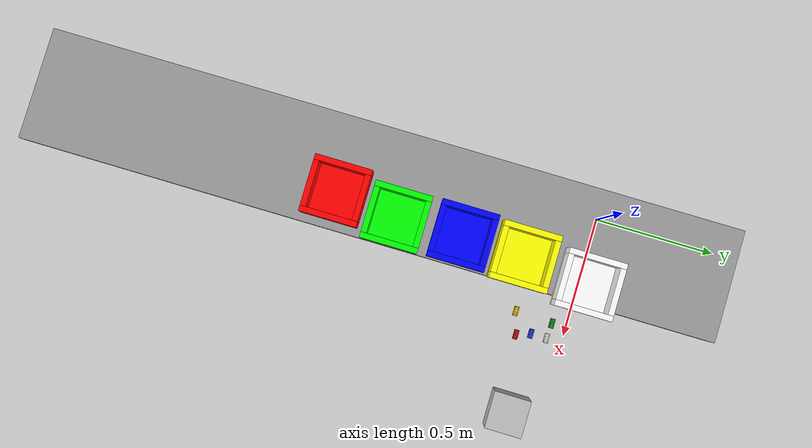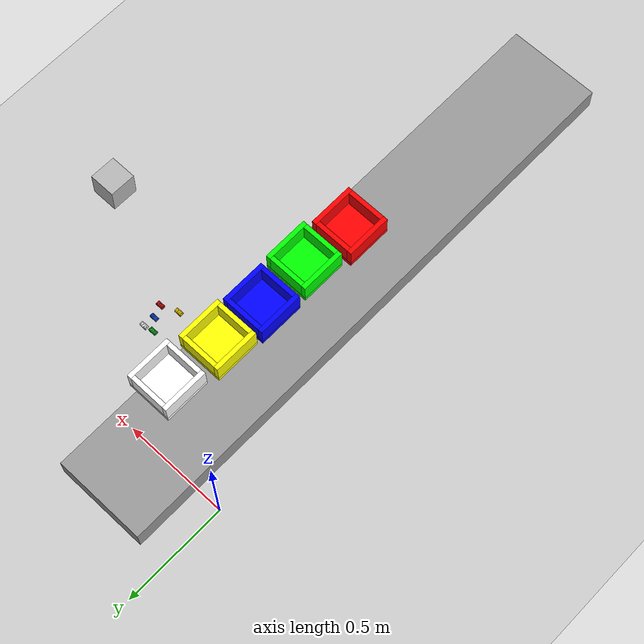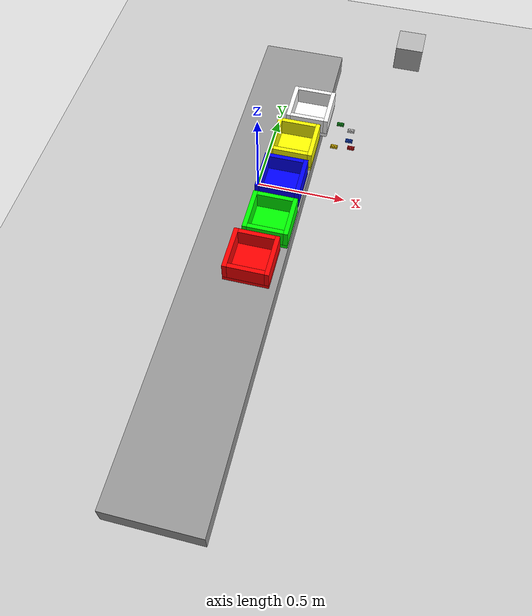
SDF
<sdf version="1.9">
 <world name="empty">
  <physics name="1ms" type="ignored">
   <max_step_size>0.001</max_step_size>
   <real_time_factor>1</real_time_factor>
   <real_time_update_rate>1000</real_time_update_rate>
  </physics>
  <plugin name="ignition::gazebo::systems::Sensors" filename="ignition-gazebo-sensors-system">
   <render_engine>ogre2</render_engine>
  </plugin>
  <plugin name="gz::sim::systems::Physics" filename="ignition-gazebo-physics-system"/>
  <plugin name="gz::sim::systems::UserCommands" filename="ignition-gazebo-user-commands-system"/>
  <plugin name="gz::sim::systems::SceneBroadcaster" filename="ignition-gazebo-scene-broadcaster-system"/>
  <plugin name="gz::sim::systems::Contact" filename="ignition-gazebo-contact-system"/>
  <gravity>0 0 -9.8</gravity>
  <magnetic_field>6e-06 2.3e-05 -4.2e-05</magnetic_field>
  <atmosphere type="adiabatic"/>
  <scene><ambient>0.4 0.4 0.4 1</ambient><background>0.7 0.7 0.7 1</background><shadows>true</shadows></scene>
  <model name="ground_plane">
   <static>true</static>
   <link name="link">
    <collision name="collision">
     <geometry><plane><normal>0 0 1</normal><size>100 100</size></plane></geometry>
    </collision>
    <visual name="visual">
     <geometry><plane><normal>0 0 1</normal><size>100 100</size></plane></geometry>
     <material>
      <ambient>0.8 0.8 0.8 1</ambient>
      <diffuse>0.8 0.8 0.8 1</diffuse>
      <specular>0.8 0.8 0.8 1</specular>
     </material>
    </visual>
    <inertial>
     <mass>1</mass>
     <inertia><ixx>1</ixx><ixy>0</ixy><ixz>0</ixz><iyy>1</iyy><iyz>0</iyz><izz>1</izz></inertia>
    </inertial>
   </link>
  </model>
  <include>
   <uri>model://models/underbin_bench</uri>
   <name>underbin_bench</name>
   <pose>0.162367 -0.864988 0.636012 0 -0 0</pose>
  </include>
  <include>
   <uri>model://models/bin_red</uri>
   <name>bin_red</name>
   <pose>0.233854 -0.99784 0.713556 0 -0 0</pose>
  </include>
  <include>
   <uri>model://models/bin_green</uri>
   <name>bin_green</name>
   <pose>0.26088 -0.778593 0.708401 0 -0 0</pose>
  </include>
  <include>
   <uri>model://models/bin_blue</uri>
   <name>bin_blue</name>
   <pose>0.256463 -0.54652 0.702335 0 -0 0</pose>
  </include>
  <include>
   <uri>model://models/bin_yellow</uri>
   <name>bin_yellow</name>
   <pose>0.266331 -0.328466 0.71476 0 -0 0</pose>
  </include>
  <include>
   <uri>model://models/bin_white</uri>
   <name>bin_white</name>
   <pose>0.293498 -0.093944 0.70429 0 -0 0</pose>
  </include>
  <model name="lego_2x4_white">
   <static>false</static>
   <link name="link">
    <inertial>
     <mass>0.016</mass>
     <inertia>
      <ixx>9.9999999999999995e-07</ixx>
      <ixy>0</ixy>
      <ixz>0</ixz>
      <iyy>9.9999999999999995e-07</iyy>
      <iyz>0</iyz>
      <izz>9.9999999999999995e-07</izz>
     </inertia>
    </inertial>
    <visual name="body">
     <pose>0 0 0.004800 0 0 0</pose>
     <geometry><box><size>0.032 0.016 0.0096</size></box></geometry>
     <material>
      <ambient>0.95 0.95 0.95 1</ambient>
      <diffuse>0.95 0.95 0.95 1</diffuse>
      <specular>0.2 0.2 0.2 1</specular>
     </material>
    </visual>
    <collision name="body_col">
     <pose>0 0 0.004800 0 0 0</pose>
     <geometry><box><size>0.032 0.016 0.0096</size></box></geometry>
     <surface><friction><ode><mu>0.80000000000000004</mu><mu2>0.80000000000000004</mu2></ode></friction></surface>
    </collision>
    <visual name="stud_0_0">
     <pose>-0.012000 -0.004000 0.010500 0 0 0</pose>
     <geometry><cylinder><radius>0.0023999999999999998</radius><length>0.0018</length></cylinder></geometry>
     <material>
      <ambient>0.95 0.95 0.95 1</ambient>
      <diffuse>0.95 0.95 0.95 1</diffuse>
      <specular>0.2 0.2 0.2 1</specular>
     </material>
    </visual>
    <collision name="stud_col_0_0">
     <pose>-0.012000 -0.004000 0.010500 0 0 0</pose>
     <geometry><cylinder><radius>0.0023999999999999998</radius><length>0.0018</length></cylinder></geometry>
    </collision>
    <visual name="stud_0_1">
     <pose>-0.012000 0.004000 0.010500 0 0 0</pose>
     <geometry><cylinder><radius>0.0023999999999999998</radius><length>0.0018</length></cylinder></geometry>
     <material>
      <ambient>0.95 0.95 0.95 1</ambient>
      <diffuse>0.95 0.95 0.95 1</diffuse>
      <specular>0.2 0.2 0.2 1</specular>
     </material>
    </visual>
    <collision name="stud_col_0_1">
     <pose>-0.012000 0.004000 0.010500 0 0 0</pose>
     <geometry><cylinder><radius>0.0023999999999999998</radius><length>0.0018</length></cylinder></geometry>
    </collision>
    <visual name="stud_1_0">
     <pose>-0.004000 -0.004000 0.010500 0 0 0</pose>
     <geometry><cylinder><radius>0.0023999999999999998</radius><length>0.0018</length></cylinder></geometry>
     <material>
      <ambient>0.95 0.95 0.95 1</ambient>
      <diffuse>0.95 0.95 0.95 1</diffuse>
      <specular>0.2 0.2 0.2 1</specular>
     </material>
    </visual>
    <collision name="stud_col_1_0">
     <pose>-0.004000 -0.004000 0.010500 0 0 0</pose>
     <geometry><cylinder><radius>0.0023999999999999998</radius><length>0.0018</length></cylinder></geometry>
    </collision>
    <visual name="stud_1_1">
     <pose>-0.004000 0.004000 0.010500 0 0 0</pose>
     <geometry><cylinder><radius>0.0023999999999999998</radius><length>0.0018</length></cylinder></geometry>
     <material>
      <ambient>0.95 0.95 0.95 1</ambient>
      <diffuse>0.95 0.95 0.95 1</diffuse>
      <specular>0.2 0.2 0.2 1</specular>
     </material>
    </visual>
    <collision name="stud_col_1_1">
     <pose>-0.004000 0.004000 0.010500 0 0 0</pose>
     <geometry><cylinder><radius>0.0023999999999999998</radius><length>0.0018</length></cylinder></geometry>
    </collision>
    <visual name="stud_2_0">
     <pose>0.004000 -0.004000 0.010500 0 0 0</pose>
     <geometry><cylinder><radius>0.0023999999999999998</radius><length>0.0018</length></cylinder></geometry>
     <material>
      <ambient>0.95 0.95 0.95 1</ambient>
      <diffuse>0.95 0.95 0.95 1</diffuse>
      <specular>0.2 0.2 0.2 1</specular>
     </material>
    </visual>
    <collision name="stud_col_2_0">
     <pose>0.004000 -0.004000 0.010500 0 0 0</pose>
     <geometry><cylinder><radius>0.0023999999999999998</radius><length>0.0018</length></cylinder></geometry>
    </collision>
    <visual name="stud_2_1">
     <pose>0.004000 0.004000 0.010500 0 0 0</pose>
     <geometry><cylinder><radius>0.0023999999999999998</radius><length>0.0018</length></cylinder></geometry>
     <material>
      <ambient>0.95 0.95 0.95 1</ambient>
      <diffuse>0.95 0.95 0.95 1</diffuse>
      <specular>0.2 0.2 0.2 1</specular>
     </material>
    </visual>
    <collision name="stud_col_2_1">
     <pose>0.004000 0.004000 0.010500 0 0 0</pose>
     <geometry><cylinder><radius>0.0023999999999999998</radius><length>0.0018</length></cylinder></geometry>
    </collision>
    <visual name="stud_3_0">
     <pose>0.012000 -0.004000 0.010500 0 0 0</pose>
     <geometry><cylinder><radius>0.0023999999999999998</radius><length>0.0018</length></cylinder></geometry>
     <material>
      <ambient>0.95 0.95 0.95 1</ambient>
      <diffuse>0.95 0.95 0.95 1</diffuse>
      <specular>0.2 0.2 0.2 1</specular>
     </material>
    </visual>
    <collision name="stud_col_3_0">
     <pose>0.012000 -0.004000 0.010500 0 0 0</pose>
     <geometry><cylinder><radius>0.0023999999999999998</radius><length>0.0018</length></cylinder></geometry>
    </collision>
    <visual name="stud_3_1">
     <pose>0.012000 0.004000 0.010500 0 0 0</pose>
     <geometry><cylinder><radius>0.0023999999999999998</radius><length>0.0018</length></cylinder></geometry>
     <material>
      <ambient>0.95 0.95 0.95 1</ambient>
      <diffuse>0.95 0.95 0.95 1</diffuse>
      <specular>0.2 0.2 0.2 1</specular>
     </material>
    </visual>
    <collision name="stud_col_3_1">
     <pose>0.012000 0.004000 0.010500 0 0 0</pose>
     <geometry><cylinder><radius>0.0023999999999999998</radius><length>0.0018</length></cylinder></geometry>
    </collision>
   </link>
   <pose>0.506689 -0.181716 0.745001 0 -0 0</pose>
  </model>
  <model name="lego_2x4_red">
   <static>false</static>
   <link name="link">
    <inertial>
     <mass>0.016</mass>
     <inertia>
      <ixx>9.9999999999999995e-07</ixx>
      <ixy>0</ixy>
      <ixz>0</ixz>
      <iyy>9.9999999999999995e-07</iyy>
      <iyz>0</iyz>
      <izz>9.9999999999999995e-07</izz>
     </inertia>
    </inertial>
    <visual name="body">
     <pose>0 0 0.004800 0 0 0</pose>
     <geometry><box><size>0.032 0.016 0.0096</size></box></geometry>
     <material>
      <ambient>0.85 0.1 0.1 1</ambient>
      <diffuse>0.85 0.1 0.1 1</diffuse>
      <specular>0.2 0.2 0.2 1</specular>
     </material>
    </visual>
    <collision name="body_col">
     <pose>0 0 0.004800 0 0 0</pose>
     <geometry><box><size>0.032 0.016 0.0096</size></box></geometry>
     <surface><friction><ode><mu>0.80000000000000004</mu><mu2>0.80000000000000004</mu2></ode></friction></surface>
    </collision>
    <visual name="stud_0_0">
     <pose>-0.012000 -0.004000 0.010500 0 0 0</pose>
     <geometry><cylinder><radius>0.0023999999999999998</radius><length>0.0018</length></cylinder></geometry>
     <material>
      <ambient>0.85 0.1 0.1 1</ambient>
      <diffuse>0.85 0.1 0.1 1</diffuse>
      <specular>0.2 0.2 0.2 1</specular>
     </material>
    </visual>
    <collision name="stud_col_0_0">
     <pose>-0.012000 -0.004000 0.010500 0 0 0</pose>
     <geometry><cylinder><radius>0.0023999999999999998</radius><length>0.0018</length></cylinder></geometry>
    </collision>
    <visual name="stud_0_1">
     <pose>-0.012000 0.004000 0.010500 0 0 0</pose>
     <geometry><cylinder><radius>0.0023999999999999998</radius><length>0.0018</length></cylinder></geometry>
     <material>
      <ambient>0.85 0.1 0.1 1</ambient>
      <diffuse>0.85 0.1 0.1 1</diffuse>
      <specular>0.2 0.2 0.2 1</specular>
     </material>
    </visual>
    <collision name="stud_col_0_1">
     <pose>-0.012000 0.004000 0.010500 0 0 0</pose>
     <geometry><cylinder><radius>0.0023999999999999998</radius><length>0.0018</length></cylinder></geometry>
    </collision>
    <visual name="stud_1_0">
     <pose>-0.004000 -0.004000 0.010500 0 0 0</pose>
     <geometry><cylinder><radius>0.0023999999999999998</radius><length>0.0018</length></cylinder></geometry>
     <material>
      <ambient>0.85 0.1 0.1 1</ambient>
      <diffuse>0.85 0.1 0.1 1</diffuse>
      <specular>0.2 0.2 0.2 1</specular>
     </material>
    </visual>
    <collision name="stud_col_1_0">
     <pose>-0.004000 -0.004000 0.010500 0 0 0</pose>
     <geometry><cylinder><radius>0.0023999999999999998</radius><length>0.0018</length></cylinder></geometry>
    </collision>
    <visual name="stud_1_1">
     <pose>-0.004000 0.004000 0.010500 0 0 0</pose>
     <geometry><cylinder><radius>0.0023999999999999998</radius><length>0.0018</length></cylinder></geometry>
     <material>
      <ambient>0.85 0.1 0.1 1</ambient>
      <diffuse>0.85 0.1 0.1 1</diffuse>
      <specular>0.2 0.2 0.2 1</specular>
     </material>
    </visual>
    <collision name="stud_col_1_1">
     <pose>-0.004000 0.004000 0.010500 0 0 0</pose>
     <geometry><cylinder><radius>0.0023999999999999998</radius><length>0.0018</length></cylinder></geometry>
    </collision>
    <visual name="stud_2_0">
     <pose>0.004000 -0.004000 0.010500 0 0 0</pose>
     <geometry><cylinder><radius>0.0023999999999999998</radius><length>0.0018</length></cylinder></geometry>
     <material>
      <ambient>0.85 0.1 0.1 1</ambient>
      <diffuse>0.85 0.1 0.1 1</diffuse>
      <specular>0.2 0.2 0.2 1</specular>
     </material>
    </visual>
    <collision name="stud_col_2_0">
     <pose>0.004000 -0.004000 0.010500 0 0 0</pose>
     <geometry><cylinder><radius>0.0023999999999999998</radius><length>0.0018</length></cylinder></geometry>
    </collision>
    <visual name="stud_2_1">
     <pose>0.004000 0.004000 0.010500 0 0 0</pose>
     <geometry><cylinder><radius>0.0023999999999999998</radius><length>0.0018</length></cylinder></geometry>
     <material>
      <ambient>0.85 0.1 0.1 1</ambient>
      <diffuse>0.85 0.1 0.1 1</diffuse>
      <specular>0.2 0.2 0.2 1</specular>
     </material>
    </visual>
    <collision name="stud_col_2_1">
     <pose>0.004000 0.004000 0.010500 0 0 0</pose>
     <geometry><cylinder><radius>0.0023999999999999998</radius><length>0.0018</length></cylinder></geometry>
    </collision>
    <visual name="stud_3_0">
     <pose>0.012000 -0.004000 0.010500 0 0 0</pose>
     <geometry><cylinder><radius>0.0023999999999999998</radius><length>0.0018</length></cylinder></geometry>
     <material>
      <ambient>0.85 0.1 0.1 1</ambient>
      <diffuse>0.85 0.1 0.1 1</diffuse>
      <specular>0.2 0.2 0.2 1</specular>
     </material>
    </visual>
    <collision name="stud_col_3_0">
     <pose>0.012000 -0.004000 0.010500 0 0 0</pose>
     <geometry><cylinder><radius>0.0023999999999999998</radius><length>0.0018</length></cylinder></geometry>
    </collision>
    <visual name="stud_3_1">
     <pose>0.012000 0.004000 0.010500 0 0 0</pose>
     <geometry><cylinder><radius>0.0023999999999999998</radius><length>0.0018</length></cylinder></geometry>
     <material>
      <ambient>0.85 0.1 0.1 1</ambient>
      <diffuse>0.85 0.1 0.1 1</diffuse>
      <specular>0.2 0.2 0.2 1</specular>
     </material>
    </visual>
    <collision name="stud_col_3_1">
     <pose>0.012000 0.004000 0.010500 0 0 0</pose>
     <geometry><cylinder><radius>0.0023999999999999998</radius><length>0.0018</length></cylinder></geometry>
    </collision>
   </link>
   <pose>0.524384 -0.282278 0.73742 0 -0 0</pose>
  </model>
  <model name="lego_2x4_yellow">
   <static>false</static>
   <link name="link">
    <inertial>
     <mass>0.016</mass>
     <inertia>
      <ixx>9.9999999999999995e-07</ixx>
      <ixy>0</ixy>
      <ixz>0</ixz>
      <iyy>9.9999999999999995e-07</iyy>
      <iyz>0</iyz>
      <izz>9.9999999999999995e-07</izz>
     </inertia>
    </inertial>
    <visual name="body">
     <pose>0 0 0.004800 0 0 0</pose>
     <geometry><box><size>0.032 0.016 0.0096</size></box></geometry>
     <material>
      <ambient>0.95 0.8 0.05 1</ambient>
      <diffuse>0.95 0.8 0.05 1</diffuse>
      <specular>0.2 0.2 0.2 1</specular>
     </material>
    </visual>
    <collision name="body_col">
     <pose>0 0 0.004800 0 0 0</pose>
     <geometry><box><size>0.032 0.016 0.0096</size></box></geometry>
     <surface><friction><ode><mu>0.80000000000000004</mu><mu2>0.80000000000000004</mu2></ode></friction></surface>
    </collision>
    <visual name="stud_0_0">
     <pose>-0.012000 -0.004000 0.010500 0 0 0</pose>
     <geometry><cylinder><radius>0.0023999999999999998</radius><length>0.0018</length></cylinder></geometry>
     <material>
      <ambient>0.95 0.8 0.05 1</ambient>
      <diffuse>0.95 0.8 0.05 1</diffuse>
      <specular>0.2 0.2 0.2 1</specular>
     </material>
    </visual>
    <collision name="stud_col_0_0">
     <pose>-0.012000 -0.004000 0.010500 0 0 0</pose>
     <geometry><cylinder><radius>0.0023999999999999998</radius><length>0.0018</length></cylinder></geometry>
    </collision>
    <visual name="stud_0_1">
     <pose>-0.012000 0.004000 0.010500 0 0 0</pose>
     <geometry><cylinder><radius>0.0023999999999999998</radius><length>0.0018</length></cylinder></geometry>
     <material>
      <ambient>0.95 0.8 0.05 1</ambient>
      <diffuse>0.95 0.8 0.05 1</diffuse>
      <specular>0.2 0.2 0.2 1</specular>
     </material>
    </visual>
    <collision name="stud_col_0_1">
     <pose>-0.012000 0.004000 0.010500 0 0 0</pose>
     <geometry><cylinder><radius>0.0023999999999999998</radius><length>0.0018</length></cylinder></geometry>
    </collision>
    <visual name="stud_1_0">
     <pose>-0.004000 -0.004000 0.010500 0 0 0</pose>
     <geometry><cylinder><radius>0.0023999999999999998</radius><length>0.0018</length></cylinder></geometry>
     <material>
      <ambient>0.95 0.8 0.05 1</ambient>
      <diffuse>0.95 0.8 0.05 1</diffuse>
      <specular>0.2 0.2 0.2 1</specular>
     </material>
    </visual>
    <collision name="stud_col_1_0">
     <pose>-0.004000 -0.004000 0.010500 0 0 0</pose>
     <geometry><cylinder><radius>0.0023999999999999998</radius><length>0.0018</length></cylinder></geometry>
    </collision>
    <visual name="stud_1_1">
     <pose>-0.004000 0.004000 0.010500 0 0 0</pose>
     <geometry><cylinder><radius>0.0023999999999999998</radius><length>0.0018</length></cylinder></geometry>
     <material>
      <ambient>0.95 0.8 0.05 1</ambient>
      <diffuse>0.95 0.8 0.05 1</diffuse>
      <specular>0.2 0.2 0.2 1</specular>
     </material>
    </visual>
    <collision name="stud_col_1_1">
     <pose>-0.004000 0.004000 0.010500 0 0 0</pose>
     <geometry><cylinder><radius>0.0023999999999999998</radius><length>0.0018</length></cylinder></geometry>
    </collision>
    <visual name="stud_2_0">
     <pose>0.004000 -0.004000 0.010500 0 0 0</pose>
     <geometry><cylinder><radius>0.0023999999999999998</radius><length>0.0018</length></cylinder></geometry>
     <material>
      <ambient>0.95 0.8 0.05 1</ambient>
      <diffuse>0.95 0.8 0.05 1</diffuse>
      <specular>0.2 0.2 0.2 1</specular>
     </material>
    </visual>
    <collision name="stud_col_2_0">
     <pose>0.004000 -0.004000 0.010500 0 0 0</pose>
     <geometry><cylinder><radius>0.0023999999999999998</radius><length>0.0018</length></cylinder></geometry>
    </collision>
    <visual name="stud_2_1">
     <pose>0.004000 0.004000 0.010500 0 0 0</pose>
     <geometry><cylinder><radius>0.0023999999999999998</radius><length>0.0018</length></cylinder></geometry>
     <material>
      <ambient>0.95 0.8 0.05 1</ambient>
      <diffuse>0.95 0.8 0.05 1</diffuse>
      <specular>0.2 0.2 0.2 1</specular>
     </material>
    </visual>
    <collision name="stud_col_2_1">
     <pose>0.004000 0.004000 0.010500 0 0 0</pose>
     <geometry><cylinder><radius>0.0023999999999999998</radius><length>0.0018</length></cylinder></geometry>
    </collision>
    <visual name="stud_3_0">
     <pose>0.012000 -0.004000 0.010500 0 0 0</pose>
     <geometry><cylinder><radius>0.0023999999999999998</radius><length>0.0018</length></cylinder></geometry>
     <material>
      <ambient>0.95 0.8 0.05 1</ambient>
      <diffuse>0.95 0.8 0.05 1</diffuse>
      <specular>0.2 0.2 0.2 1</specular>
     </material>
    </visual>
    <collision name="stud_col_3_0">
     <pose>0.012000 -0.004000 0.010500 0 0 0</pose>
     <geometry><cylinder><radius>0.0023999999999999998</radius><length>0.0018</length></cylinder></geometry>
    </collision>
    <visual name="stud_3_1">
     <pose>0.012000 0.004000 0.010500 0 0 0</pose>
     <geometry><cylinder><radius>0.0023999999999999998</radius><length>0.0018</length></cylinder></geometry>
     <material>
      <ambient>0.95 0.8 0.05 1</ambient>
      <diffuse>0.95 0.8 0.05 1</diffuse>
      <specular>0.2 0.2 0.2 1</specular>
     </material>
    </visual>
    <collision name="stud_col_3_1">
     <pose>0.012000 0.004000 0.010500 0 0 0</pose>
     <geometry><cylinder><radius>0.0023999999999999998</radius><length>0.0018</length></cylinder></geometry>
    </collision>
   </link>
   <pose>0.448605 -0.305647 0.753093 0 -0 0</pose>
  </model>
  <model name="lego_2x4_green">
   <static>false</static>
   <link name="link">
    <inertial>
     <mass>0.016</mass>
     <inertia>
      <ixx>9.9999999999999995e-07</ixx>
      <ixy>0</ixy>
      <ixz>0</ixz>
      <iyy>9.9999999999999995e-07</iyy>
      <iyz>0</iyz>
      <izz>9.9999999999999995e-07</izz>
     </inertia>
    </inertial>
    <visual name="body">
     <pose>0 0 0.004800 0 0 0</pose>
     <geometry><box><size>0.032 0.016 0.0096</size></box></geometry>
     <material>
      <ambient>0.1 0.65 0.15 1</ambient>
      <diffuse>0.1 0.65 0.15 1</diffuse>
      <specular>0.2 0.2 0.2 1</specular>
     </material>
    </visual>
    <collision name="body_col">
     <pose>0 0 0.004800 0 0 0</pose>
     <geometry><box><size>0.032 0.016 0.0096</size></box></geometry>
     <surface><friction><ode><mu>0.80000000000000004</mu><mu2>0.80000000000000004</mu2></ode></friction></surface>
    </collision>
    <visual name="stud_0_0">
     <pose>-0.012000 -0.004000 0.010500 0 0 0</pose>
     <geometry><cylinder><radius>0.0023999999999999998</radius><length>0.0018</length></cylinder></geometry>
     <material>
      <ambient>0.1 0.65 0.15 1</ambient>
      <diffuse>0.1 0.65 0.15 1</diffuse>
      <specular>0.2 0.2 0.2 1</specular>
     </material>
    </visual>
    <collision name="stud_col_0_0">
     <pose>-0.012000 -0.004000 0.010500 0 0 0</pose>
     <geometry><cylinder><radius>0.0023999999999999998</radius><length>0.0018</length></cylinder></geometry>
    </collision>
    <visual name="stud_0_1">
     <pose>-0.012000 0.004000 0.010500 0 0 0</pose>
     <geometry><cylinder><radius>0.0023999999999999998</radius><length>0.0018</length></cylinder></geometry>
     <material>
      <ambient>0.1 0.65 0.15 1</ambient>
      <diffuse>0.1 0.65 0.15 1</diffuse>
      <specular>0.2 0.2 0.2 1</specular>
     </material>
    </visual>
    <collision name="stud_col_0_1">
     <pose>-0.012000 0.004000 0.010500 0 0 0</pose>
     <geometry><cylinder><radius>0.0023999999999999998</radius><length>0.0018</length></cylinder></geometry>
    </collision>
    <visual name="stud_1_0">
     <pose>-0.004000 -0.004000 0.010500 0 0 0</pose>
     <geometry><cylinder><radius>0.0023999999999999998</radius><length>0.0018</length></cylinder></geometry>
     <material>
      <ambient>0.1 0.65 0.15 1</ambient>
      <diffuse>0.1 0.65 0.15 1</diffuse>
      <specular>0.2 0.2 0.2 1</specular>
     </material>
    </visual>
    <collision name="stud_col_1_0">
     <pose>-0.004000 -0.004000 0.010500 0 0 0</pose>
     <geometry><cylinder><radius>0.0023999999999999998</radius><length>0.0018</length></cylinder></geometry>
    </collision>
    <visual name="stud_1_1">
     <pose>-0.004000 0.004000 0.010500 0 0 0</pose>
     <geometry><cylinder><radius>0.0023999999999999998</radius><length>0.0018</length></cylinder></geometry>
     <material>
      <ambient>0.1 0.65 0.15 1</ambient>
      <diffuse>0.1 0.65 0.15 1</diffuse>
      <specular>0.2 0.2 0.2 1</specular>
     </material>
    </visual>
    <collision name="stud_col_1_1">
     <pose>-0.004000 0.004000 0.010500 0 0 0</pose>
     <geometry><cylinder><radius>0.0023999999999999998</radius><length>0.0018</length></cylinder></geometry>
    </collision>
    <visual name="stud_2_0">
     <pose>0.004000 -0.004000 0.010500 0 0 0</pose>
     <geometry><cylinder><radius>0.0023999999999999998</radius><length>0.0018</length></cylinder></geometry>
     <material>
      <ambient>0.1 0.65 0.15 1</ambient>
      <diffuse>0.1 0.65 0.15 1</diffuse>
      <specular>0.2 0.2 0.2 1</specular>
     </material>
    </visual>
    <collision name="stud_col_2_0">
     <pose>0.004000 -0.004000 0.010500 0 0 0</pose>
     <geometry><cylinder><radius>0.0023999999999999998</radius><length>0.0018</length></cylinder></geometry>
    </collision>
    <visual name="stud_2_1">
     <pose>0.004000 0.004000 0.010500 0 0 0</pose>
     <geometry><cylinder><radius>0.0023999999999999998</radius><length>0.0018</length></cylinder></geometry>
     <material>
      <ambient>0.1 0.65 0.15 1</ambient>
      <diffuse>0.1 0.65 0.15 1</diffuse>
      <specular>0.2 0.2 0.2 1</specular>
     </material>
    </visual>
    <collision name="stud_col_2_1">
     <pose>0.004000 0.004000 0.010500 0 0 0</pose>
     <geometry><cylinder><radius>0.0023999999999999998</radius><length>0.0018</length></cylinder></geometry>
    </collision>
    <visual name="stud_3_0">
     <pose>0.012000 -0.004000 0.010500 0 0 0</pose>
     <geometry><cylinder><radius>0.0023999999999999998</radius><length>0.0018</length></cylinder></geometry>
     <material>
      <ambient>0.1 0.65 0.15 1</ambient>
      <diffuse>0.1 0.65 0.15 1</diffuse>
      <specular>0.2 0.2 0.2 1</specular>
     </material>
    </visual>
    <collision name="stud_col_3_0">
     <pose>0.012000 -0.004000 0.010500 0 0 0</pose>
     <geometry><cylinder><radius>0.0023999999999999998</radius><length>0.0018</length></cylinder></geometry>
    </collision>
    <visual name="stud_3_1">
     <pose>0.012000 0.004000 0.010500 0 0 0</pose>
     <geometry><cylinder><radius>0.0023999999999999998</radius><length>0.0018</length></cylinder></geometry>
     <material>
      <ambient>0.1 0.65 0.15 1</ambient>
      <diffuse>0.1 0.65 0.15 1</diffuse>
      <specular>0.2 0.2 0.2 1</specular>
     </material>
    </visual>
    <collision name="stud_col_3_1">
     <pose>0.012000 0.004000 0.010500 0 0 0</pose>
     <geometry><cylinder><radius>0.0023999999999999998</radius><length>0.0018</length></cylinder></geometry>
    </collision>
   </link>
   <pose>0.45411 -0.182155 0.776123 0 -0 0</pose>
  </model>
  <model name="lego_2x4_blue">
   <static>false</static>
   <link name="link">
    <inertial>
     <mass>0.016</mass>
     <inertia>
      <ixx>9.9999999999999995e-07</ixx>
      <ixy>0</ixy>
      <ixz>0</ixz>
      <iyy>9.9999999999999995e-07</iyy>
      <iyz>0</iyz>
      <izz>9.9999999999999995e-07</izz>
     </inertia>
    </inertial>
    <visual name="body">
     <pose>0 0 0.004800 0 0 0</pose>
     <geometry><box><size>0.032 0.016 0.0096</size></box></geometry>
     <material>
      <ambient>0.1 0.3 0.85 1</ambient>
      <diffuse>0.1 0.3 0.85 1</diffuse>
      <specular>0.2 0.2 0.2 1</specular>
     </material>
    </visual>
    <collision name="body_col">
     <pose>0 0 0.004800 0 0 0</pose>
     <geometry><box><size>0.032 0.016 0.0096</size></box></geometry>
     <surface><friction><ode><mu>0.80000000000000004</mu><mu2>0.80000000000000004</mu2></ode></friction></surface>
    </collision>
    <visual name="stud_0_0">
     <pose>-0.012000 -0.004000 0.010500 0 0 0</pose>
     <geometry><cylinder><radius>0.0023999999999999998</radius><length>0.0018</length></cylinder></geometry>
     <material>
      <ambient>0.1 0.3 0.85 1</ambient>
      <diffuse>0.1 0.3 0.85 1</diffuse>
      <specular>0.2 0.2 0.2 1</specular>
     </material>
    </visual>
    <collision name="stud_col_0_0">
     <pose>-0.012000 -0.004000 0.010500 0 0 0</pose>
     <geometry><cylinder><radius>0.0023999999999999998</radius><length>0.0018</length></cylinder></geometry>
    </collision>
    <visual name="stud_0_1">
     <pose>-0.012000 0.004000 0.010500 0 0 0</pose>
     <geometry><cylinder><radius>0.0023999999999999998</radius><length>0.0018</length></cylinder></geometry>
     <material>
      <ambient>0.1 0.3 0.85 1</ambient>
      <diffuse>0.1 0.3 0.85 1</diffuse>
      <specular>0.2 0.2 0.2 1</specular>
     </material>
    </visual>
    <collision name="stud_col_0_1">
     <pose>-0.012000 0.004000 0.010500 0 0 0</pose>
     <geometry><cylinder><radius>0.0023999999999999998</radius><length>0.0018</length></cylinder></geometry>
    </collision>
    <visual name="stud_1_0">
     <pose>-0.004000 -0.004000 0.010500 0 0 0</pose>
     <geometry><cylinder><radius>0.0023999999999999998</radius><length>0.0018</length></cylinder></geometry>
     <material>
      <ambient>0.1 0.3 0.85 1</ambient>
      <diffuse>0.1 0.3 0.85 1</diffuse>
      <specular>0.2 0.2 0.2 1</specular>
     </material>
    </visual>
    <collision name="stud_col_1_0">
     <pose>-0.004000 -0.004000 0.010500 0 0 0</pose>
     <geometry><cylinder><radius>0.0023999999999999998</radius><length>0.0018</length></cylinder></geometry>
    </collision>
    <visual name="stud_1_1">
     <pose>-0.004000 0.004000 0.010500 0 0 0</pose>
     <geometry><cylinder><radius>0.0023999999999999998</radius><length>0.0018</length></cylinder></geometry>
     <material>
      <ambient>0.1 0.3 0.85 1</ambient>
      <diffuse>0.1 0.3 0.85 1</diffuse>
      <specular>0.2 0.2 0.2 1</specular>
     </material>
    </visual>
    <collision name="stud_col_1_1">
     <pose>-0.004000 0.004000 0.010500 0 0 0</pose>
     <geometry><cylinder><radius>0.0023999999999999998</radius><length>0.0018</length></cylinder></geometry>
    </collision>
    <visual name="stud_2_0">
     <pose>0.004000 -0.004000 0.010500 0 0 0</pose>
     <geometry><cylinder><radius>0.0023999999999999998</radius><length>0.0018</length></cylinder></geometry>
     <material>
      <ambient>0.1 0.3 0.85 1</ambient>
      <diffuse>0.1 0.3 0.85 1</diffuse>
      <specular>0.2 0.2 0.2 1</specular>
     </material>
    </visual>
    <collision name="stud_col_2_0">
     <pose>0.004000 -0.004000 0.010500 0 0 0</pose>
     <geometry><cylinder><radius>0.0023999999999999998</radius><length>0.0018</length></cylinder></geometry>
    </collision>
    <visual name="stud_2_1">
     <pose>0.004000 0.004000 0.010500 0 0 0</pose>
     <geometry><cylinder><radius>0.0023999999999999998</radius><length>0.0018</length></cylinder></geometry>
     <material>
      <ambient>0.1 0.3 0.85 1</ambient>
      <diffuse>0.1 0.3 0.85 1</diffuse>
      <specular>0.2 0.2 0.2 1</specular>
     </material>
    </visual>
    <collision name="stud_col_2_1">
     <pose>0.004000 0.004000 0.010500 0 0 0</pose>
     <geometry><cylinder><radius>0.0023999999999999998</radius><length>0.0018</length></cylinder></geometry>
    </collision>
    <visual name="stud_3_0">
     <pose>0.012000 -0.004000 0.010500 0 0 0</pose>
     <geometry><cylinder><radius>0.0023999999999999998</radius><length>0.0018</length></cylinder></geometry>
     <material>
      <ambient>0.1 0.3 0.85 1</ambient>
      <diffuse>0.1 0.3 0.85 1</diffuse>
      <specular>0.2 0.2 0.2 1</specular>
     </material>
    </visual>
    <collision name="stud_col_3_0">
     <pose>0.012000 -0.004000 0.010500 0 0 0</pose>
     <geometry><cylinder><radius>0.0023999999999999998</radius><length>0.0018</length></cylinder></geometry>
    </collision>
    <visual name="stud_3_1">
     <pose>0.012000 0.004000 0.010500 0 0 0</pose>
     <geometry><cylinder><radius>0.0023999999999999998</radius><length>0.0018</length></cylinder></geometry>
     <material>
      <ambient>0.1 0.3 0.85 1</ambient>
      <diffuse>0.1 0.3 0.85 1</diffuse>
      <specular>0.2 0.2 0.2 1</specular>
     </material>
    </visual>
    <collision name="stud_col_3_1">
     <pose>0.012000 0.004000 0.010500 0 0 0</pose>
     <geometry><cylinder><radius>0.0023999999999999998</radius><length>0.0018</length></cylinder></geometry>
    </collision>
   </link>
   <pose>0.507517 -0.233816 0.731093 0 -0 0</pose>
  </model>
  <model name="static_rgbd_camera">
   <pose>0.706379 -0.330648 1.39699 3.14159 1.53339 1.57159</pose>
   <static>true</static>
   <link name="camera_link">
    <visual name="visual"><geometry><box><size>0.1 0.1 0.1</size></box></geometry></visual>
    <sensor name="rgbd_camera" type="rgbd_camera">
     <camera>
      <horizontal_fov>1.0469999999999999</horizontal_fov>
      <image><width>640</width><height>480</height></image>
      <clip><near>0.10000000000000001</near><far>5</far></clip>
     </camera>
     <always_on>true</always_on>
     <update_rate>30</update_rate>
     <visualize>true</visualize>
     <topic>rgbd_camera</topic>
     <enable_metrics>true</enable_metrics>
     <camera_info_topic>rgbd_camera/camera_info</camera_info_topic>
    </sensor>
    <inertial>
     <mass>1</mass>
     <inertia><ixx>1</ixx><ixy>0</ixy><ixz>0</ixz><iyy>1</iyy><iyz>0</iyz><izz>1</izz></inertia>
    </inertial>
   </link>
  </model>
  <light name="sun" type="directional">
   <pose>0 0 10 0 -0 0</pose>
   <intensity>1</intensity>
   <direction>-0.5 0.1 -0.9</direction>
   <diffuse>0.8 0.8 0.8 1</diffuse>
   <specular>0.2 0.2 0.2 1</specular>
   <attenuation>
    <range>1000</range>
    <linear>0.01</linear>
    <constant>0.90000000000000002</constant>
    <quadratic>0.001</quadratic>
   </attenuation>
   <spot><inner_angle>0</inner_angle><outer_angle>0</outer_angle><falloff>0</falloff></spot>
  </light>
 </world>
</sdf>

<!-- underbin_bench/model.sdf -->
<sdf version='1.7'>
  <model name='underbin_bench'>
    <link name='link_0'>
      <inertial>
        <mass>1</mass>
        <inertia>
          <ixx>0.166667</ixx>
          <ixy>0</ixy>
          <ixz>0</ixz>
          <iyy>0.166667</iyy>
          <iyz>0</iyz>
          <izz>0.166667</izz>
        </inertia>
        <pose>0 0 0 0 -0 0</pose>
      </inertial>
      <pose>0 0 0 0 0 0</pose>
      <gravity>1</gravity>
      <self_collide>0</self_collide>
      <kinematic>0</kinematic>
      <enable_wind>0</enable_wind>
      <visual name='visual'>
        <pose>0 0 0 0 -0 0</pose>
        <geometry>
          <box>
            <!-- Lunghezza estesa da 1.5 a 2.5 -->
            <size>0.4 2.5 0.1</size>
          </box>
        </geometry>
        <material>
          <lighting>1</lighting>
          <script>
            <uri>file://media/materials/scripts/gazebo.material</uri>
            <name>Gazebo/Grey</name>
          </script>
          <shader type='pixel'>
            <normal_map>__default__</normal_map>
          </shader>
          <ambient>0.3 0.3 0.3 1</ambient>
          <diffuse>0.7 0.7 0.7 1</diffuse>
          <specular>0.01 0.01 0.01 1</specular>
          <emissive>0 0 0 1</emissive>
        </material>
        <transparency>0</transparency>
        <cast_shadows>1</cast_shadows>
      </visual>
      <collision name='collision'>
        <laser_retro>0</laser_retro>
        <max_contacts>10</max_contacts>
        <pose>0 0 0 0 -0 0</pose>
        <geometry>
          <box>
            <!-- Lunghezza estesa da 1.5 a 2.5 -->
            <size>0.4 2.5 0.1</size>
          </box>
        </geometry>
        <surface>
          <friction>
            <ode>
              <mu>1</mu>
              <mu2>1</mu2>
              <fdir1>0 0 0</fdir1>
              <slip1>0</slip1>
              <slip2>0</slip2>
            </ode>
          </friction>
        </surface>
      </collision>
    </link>
    <static>1</static> <!-- CONSIGLIO: Se la bench è fissa a terra, metti static a 1 così non cade/si muove -->
    <allow_auto_disable>1</allow_auto_disable>
  </model>
</sdf>

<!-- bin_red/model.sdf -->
<sdf version='1.7'>
  <model name='bin_red'>
    <!-- BASE -->
    <link name='link_0'>
      <inertial>
        <mass>1</mass>
        <inertia><ixx>0.166667</ixx><ixy>0</ixy><ixz>0</ixz><iyy>0.166667</iyy><iyz>0</iyz><izz>0.166667</izz></inertia>
        <pose>0 0 0 0 -0 0</pose>
      </inertial>
      <pose>0 0 0 0 -0 0</pose>
      <visual name='visual'>
        <geometry><box><size>0.20 0.20 0.02</size></box></geometry>
        <material>
          <ambient>1.0 0.0 0.0 1.0</ambient>
          <diffuse>1.0 0.0 0.0 1.0</diffuse>
          <specular>0.1 0.1 0.1 1.0</specular>
        </material>
      </visual>
      <collision name='collision'>
        <geometry><box><size>0.20 0.20 0.02</size></box></geometry>
        <surface><friction><ode><mu>1</mu><mu2>1</mu2></ode></friction></surface>
      </collision>
    </link>

    <!-- LATO SINISTRO -->
    <link name='link_1'>
      <inertial>
        <mass>1</mass>
        <inertia><ixx>0.166667</ixx><ixy>0</ixy><ixz>0</ixz><iyy>0.166667</iyy><iyz>0</iyz><izz>0.166667</izz></inertia>
      </inertial>
      <pose>-0.09 0 0.05 0 -0 0</pose>
      <visual name='visual'>
        <geometry><box><size>0.02 0.20 0.08</size></box></geometry>
        <material>
          <ambient>1.0 0.0 0.0 1.0</ambient>
          <diffuse>1.0 0.0 0.0 1.0</diffuse>
          <specular>0.1 0.1 0.1 1.0</specular>
        </material>
      </visual>
      <collision name='collision'>
        <geometry><box><size>0.02 0.20 0.08</size></box></geometry>
        <surface><friction><ode><mu>1</mu><mu2>1</mu2></ode></friction></surface>
      </collision>
    </link>

    <!-- LATO DESTRO -->
    <link name='link_1_clone'>
      <inertial>
        <mass>1</mass>
        <inertia><ixx>0.166667</ixx><ixy>0</ixy><ixz>0</ixz><iyy>0.166667</iyy><iyz>0</iyz><izz>0.166667</izz></inertia>
      </inertial>
      <pose>0.09 0 0.05 0 -0 0</pose>
      <visual name='visual'>
        <geometry><box><size>0.02 0.20 0.08</size></box></geometry>
        <material>
          <ambient>1.0 0.0 0.0 1.0</ambient>
          <diffuse>1.0 0.0 0.0 1.0</diffuse>
          <specular>0.1 0.1 0.1 1.0</specular>
        </material>
      </visual>
      <collision name='collision'>
        <geometry><box><size>0.02 0.20 0.08</size></box></geometry>
        <surface><friction><ode><mu>1</mu><mu2>1</mu2></ode></friction></surface>
      </collision>
    </link>

    <!-- LATO FRONTALE -->
    <link name='link_2'>
      <inertial>
        <mass>1</mass>
        <inertia><ixx>0.166667</ixx><ixy>0</ixy><ixz>0</ixz><iyy>0.166667</iyy><iyz>0</iyz><izz>0.166667</izz></inertia>
      </inertial>
      <pose>0 -0.09 0.05 0 -0 0</pose>
      <visual name='visual'>
        <geometry><box><size>0.16 0.02 0.08</size></box></geometry>
        <material>
          <ambient>1.0 0.0 0.0 1.0</ambient>
          <diffuse>1.0 0.0 0.0 1.0</diffuse>
          <specular>0.1 0.1 0.1 1.0</specular>
        </material>
      </visual>
      <collision name='collision'>
        <geometry><box><size>0.16 0.02 0.08</size></box></geometry>
        <surface><friction><ode><mu>1</mu><mu2>1</mu2></ode></friction></surface>
      </collision>
    </link>

    <!-- LATO POSTERIORE -->
    <link name='link_2_clone'>
      <inertial>
        <mass>1</mass>
        <inertia><ixx>0.166667</ixx><ixy>0</ixy><ixz>0</ixz><iyy>0.166667</iyy><iyz>0</iyz><izz>0.166667</izz></inertia>
      </inertial>
      <pose>0 0.09 0.05 0 -0 0</pose>
      <visual name='visual'>
        <geometry><box><size>0.16 0.02 0.08</size></box></geometry>
        <material>
          <ambient>1.0 0.0 0.0 1.0</ambient>
          <diffuse>1.0 0.0 0.0 1.0</diffuse>
          <specular>0.1 0.1 0.1 1.0</specular>
        </material>
      </visual>
      <collision name='collision'>
        <geometry><box><size>0.16 0.02 0.08</size></box></geometry>
        <surface><friction><ode><mu>1</mu><mu2>1</mu2></ode></friction></surface>
      </collision>
    </link>
    <static>0</static>
  </model>
</sdf>

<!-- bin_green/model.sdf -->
<sdf version='1.7'>
  <model name='bin_green'>
    <!-- BASE -->
    <link name='link_0'>
      <inertial>
        <mass>1</mass>
        <inertia><ixx>0.166667</ixx><ixy>0</ixy><ixz>0</ixz><iyy>0.166667</iyy><iyz>0</iyz><izz>0.166667</izz></inertia>
        <pose>0 0 0 0 -0 0</pose>
      </inertial>
      <pose>0 0 0 0 -0 0</pose>
      <visual name='visual'>
        <geometry><box><size>0.20 0.20 0.02</size></box></geometry>
        <material>
          <ambient>0.0 1.0 0.0 1.0</ambient>
          <diffuse>0.0 1.0 0.0 1.0</diffuse>
          <specular>0.1 0.1 0.1 1.0</specular>
        </material>
      </visual>
      <collision name='collision'>
        <geometry><box><size>0.20 0.20 0.02</size></box></geometry>
        <surface><friction><ode><mu>1</mu><mu2>1</mu2></ode></friction></surface>
      </collision>
    </link>

    <!-- LATO SINISTRO -->
    <link name='link_1'>
      <inertial>
        <mass>1</mass>
        <inertia><ixx>0.166667</ixx><ixy>0</ixy><ixz>0</ixz><iyy>0.166667</iyy><iyz>0</iyz><izz>0.166667</izz></inertia>
      </inertial>
      <pose>-0.09 0 0.05 0 -0 0</pose>
      <visual name='visual'>
        <geometry><box><size>0.02 0.20 0.08</size></box></geometry>
        <material>
          <ambient>0.0 1.0 0.0 1.0</ambient>
          <diffuse>0.0 1.0 0.0 1.0</diffuse>
          <specular>0.1 0.1 0.1 1.0</specular>
        </material>
      </visual>
      <collision name='collision'>
        <geometry><box><size>0.02 0.20 0.08</size></box></geometry>
        <surface><friction><ode><mu>1</mu><mu2>1</mu2></ode></friction></surface>
      </collision>
    </link>

    <!-- LATO DESTRO -->
    <link name='link_1_clone'>
      <inertial>
        <mass>1</mass>
        <inertia><ixx>0.166667</ixx><ixy>0</ixy><ixz>0</ixz><iyy>0.166667</iyy><iyz>0</iyz><izz>0.166667</izz></inertia>
      </inertial>
      <pose>0.09 0 0.05 0 -0 0</pose>
      <visual name='visual'>
        <geometry><box><size>0.02 0.20 0.08</size></box></geometry>
        <material>
          <ambient>0.0 1.0 0.0 1.0</ambient>
          <diffuse>0.0 1.0 0.0 1.0</diffuse>
          <specular>0.1 0.1 0.1 1.0</specular>
        </material>
      </visual>
      <collision name='collision'>
        <geometry><box><size>0.02 0.20 0.08</size></box></geometry>
        <surface><friction><ode><mu>1</mu><mu2>1</mu2></ode></friction></surface>
      </collision>
    </link>

    <!-- LATO FRONTALE -->
    <link name='link_2'>
      <inertial>
        <mass>1</mass>
        <inertia><ixx>0.166667</ixx><ixy>0</ixy><ixz>0</ixz><iyy>0.166667</iyy><iyz>0</iyz><izz>0.166667</izz></inertia>
      </inertial>
      <pose>0 -0.09 0.05 0 -0 0</pose>
      <visual name='visual'>
        <geometry><box><size>0.16 0.02 0.08</size></box></geometry>
        <material>
          <ambient>0.0 1.0 0.0 1.0</ambient>
          <diffuse>0.0 1.0 0.0 1.0</diffuse>
          <specular>0.1 0.1 0.1 1.0</specular>
        </material>
      </visual>
      <collision name='collision'>
        <geometry><box><size>0.16 0.02 0.08</size></box></geometry>
        <surface><friction><ode><mu>1</mu><mu2>1</mu2></ode></friction></surface>
      </collision>
    </link>

    <!-- LATO POSTERIORE -->
    <link name='link_2_clone'>
      <inertial>
        <mass>1</mass>
        <inertia><ixx>0.166667</ixx><ixy>0</ixy><ixz>0</ixz><iyy>0.166667</iyy><iyz>0</iyz><izz>0.166667</izz></inertia>
      </inertial>
      <pose>0 0.09 0.05 0 -0 0</pose>
      <visual name='visual'>
        <geometry><box><size>0.16 0.02 0.08</size></box></geometry>
        <material>
          <ambient>0.0 1.0 0.0 1.0</ambient>
          <diffuse>0.0 1.0 0.0 1.0</diffuse>
          <specular>0.1 0.1 0.1 1.0</specular>
        </material>
      </visual>
      <collision name='collision'>
        <geometry><box><size>0.16 0.02 0.08</size></box></geometry>
        <surface><friction><ode><mu>1</mu><mu2>1</mu2></ode></friction></surface>
      </collision>
    </link>
    <static>0</static>
  </model>
</sdf>

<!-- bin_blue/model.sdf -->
<sdf version='1.7'>
  <model name='bin_blue'>
    <!-- BASE -->
    <link name='link_0'>
      <inertial>
        <mass>1</mass>
        <inertia><ixx>0.166667</ixx><ixy>0</ixy><ixz>0</ixz><iyy>0.166667</iyy><iyz>0</iyz><izz>0.166667</izz></inertia>
        <pose>0 0 0 0 -0 0</pose>
      </inertial>
      <pose>0 0 0 0 -0 0</pose>
      <visual name='visual'>
        <geometry><box><size>0.20 0.20 0.02</size></box></geometry>
        <material>
          <ambient>0.0 0.0 1.0 1.0</ambient>
          <diffuse>0.0 0.0 1.0 1.0</diffuse>
          <specular>0.1 0.1 0.1 1.0</specular>
        </material>
      </visual>
      <collision name='collision'>
        <geometry><box><size>0.20 0.20 0.02</size></box></geometry>
        <surface><friction><ode><mu>1</mu><mu2>1</mu2></ode></friction></surface>
      </collision>
    </link>

    <!-- LATO SINISTRO -->
    <link name='link_1'>
      <inertial>
        <mass>1</mass>
        <inertia><ixx>0.166667</ixx><ixy>0</ixy><ixz>0</ixz><iyy>0.166667</iyy><iyz>0</iyz><izz>0.166667</izz></inertia>
      </inertial>
      <pose>-0.09 0 0.05 0 -0 0</pose>
      <visual name='visual'>
        <geometry><box><size>0.02 0.20 0.08</size></box></geometry>
        <material>
          <ambient>0.0 0.0 1.0 1.0</ambient>
          <diffuse>0.0 0.0 1.0 1.0</diffuse>
          <specular>0.1 0.1 0.1 1.0</specular>
        </material>
      </visual>
      <collision name='collision'>
        <geometry><box><size>0.02 0.20 0.08</size></box></geometry>
        <surface><friction><ode><mu>1</mu><mu2>1</mu2></ode></friction></surface>
      </collision>
    </link>

    <!-- LATO DESTRO -->
    <link name='link_1_clone'>
      <inertial>
        <mass>1</mass>
        <inertia><ixx>0.166667</ixx><ixy>0</ixy><ixz>0</ixz><iyy>0.166667</iyy><iyz>0</iyz><izz>0.166667</izz></inertia>
      </inertial>
      <pose>0.09 0 0.05 0 -0 0</pose>
      <visual name='visual'>
        <geometry><box><size>0.02 0.20 0.08</size></box></geometry>
        <material>
          <ambient>0.0 0.0 1.0 1.0</ambient>
          <diffuse>0.0 0.0 1.0 1.0</diffuse>
          <specular>0.1 0.1 0.1 1.0</specular>
        </material>
      </visual>
      <collision name='collision'>
        <geometry><box><size>0.02 0.20 0.08</size></box></geometry>
        <surface><friction><ode><mu>1</mu><mu2>1</mu2></ode></friction></surface>
      </collision>
    </link>

    <!-- LATO FRONTALE -->
    <link name='link_2'>
      <inertial>
        <mass>1</mass>
        <inertia><ixx>0.166667</ixx><ixy>0</ixy><ixz>0</ixz><iyy>0.166667</iyy><iyz>0</iyz><izz>0.166667</izz></inertia>
      </inertial>
      <pose>0 -0.09 0.05 0 -0 0</pose>
      <visual name='visual'>
        <geometry><box><size>0.16 0.02 0.08</size></box></geometry>
        <material>
          <ambient>0.0 0.0 1.0 1.0</ambient>
          <diffuse>0.0 0.0 1.0 1.0</diffuse>
          <specular>0.1 0.1 0.1 1.0</specular>
        </material>
      </visual>
      <collision name='collision'>
        <geometry><box><size>0.16 0.02 0.08</size></box></geometry>
        <surface><friction><ode><mu>1</mu><mu2>1</mu2></ode></friction></surface>
      </collision>
    </link>

    <!-- LATO POSTERIORE -->
    <link name='link_2_clone'>
      <inertial>
        <mass>1</mass>
        <inertia><ixx>0.166667</ixx><ixy>0</ixy><ixz>0</ixz><iyy>0.166667</iyy><iyz>0</iyz><izz>0.166667</izz></inertia>
      </inertial>
      <pose>0 0.09 0.05 0 -0 0</pose>
      <visual name='visual'>
        <geometry><box><size>0.16 0.02 0.08</size></box></geometry>
        <material>
          <ambient>0.0 0.0 1.0 1.0</ambient>
          <diffuse>0.0 0.0 1.0 1.0</diffuse>
          <specular>0.1 0.1 0.1 1.0</specular>
        </material>
      </visual>
      <collision name='collision'>
        <geometry><box><size>0.16 0.02 0.08</size></box></geometry>
        <surface><friction><ode><mu>1</mu><mu2>1</mu2></ode></friction></surface>
      </collision>
    </link>
    <static>0</static>
  </model>
</sdf>

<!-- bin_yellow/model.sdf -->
<sdf version='1.7'>
  <model name='bin_yellow'>
    <!-- BASE -->
    <link name='link_0'>
      <inertial>
        <mass>1</mass>
        <inertia><ixx>0.166667</ixx><ixy>0</ixy><ixz>0</ixz><iyy>0.166667</iyy><iyz>0</iyz><izz>0.166667</izz></inertia>
        <pose>0 0 0 0 -0 0</pose>
      </inertial>
      <pose>0 0 0 0 -0 0</pose>
      <visual name='visual'>
        <geometry><box><size>0.20 0.20 0.02</size></box></geometry>
        <material>
          <ambient>1.0 1.0 0.0 1.0</ambient>
          <diffuse>1.0 1.0 0.0 1.0</diffuse>
          <specular>0.1 0.1 0.1 1.0</specular>
        </material>
      </visual>
      <collision name='collision'>
        <geometry><box><size>0.20 0.20 0.02</size></box></geometry>
        <surface><friction><ode><mu>1</mu><mu2>1</mu2></ode></friction></surface>
      </collision>
    </link>

    <!-- LATO SINISTRO -->
    <link name='link_1'>
      <inertial>
        <mass>1</mass>
        <inertia><ixx>0.166667</ixx><ixy>0</ixy><ixz>0</ixz><iyy>0.166667</iyy><iyz>0</iyz><izz>0.166667</izz></inertia>
      </inertial>
      <pose>-0.09 0 0.05 0 -0 0</pose>
      <visual name='visual'>
        <geometry><box><size>0.02 0.20 0.08</size></box></geometry>
        <material>
          <ambient>1.0 1.0 0.0 1.0</ambient>
          <diffuse>1.0 1.0 0.0 1.0</diffuse>
          <specular>0.1 0.1 0.1 1.0</specular>
        </material>
      </visual>
      <collision name='collision'>
        <geometry><box><size>0.02 0.20 0.08</size></box></geometry>
        <surface><friction><ode><mu>1</mu><mu2>1</mu2></ode></friction></surface>
      </collision>
    </link>

    <!-- LATO DESTRO -->
    <link name='link_1_clone'>
      <inertial>
        <mass>1</mass>
        <inertia><ixx>0.166667</ixx><ixy>0</ixy><ixz>0</ixz><iyy>0.166667</iyy><iyz>0</iyz><izz>0.166667</izz></inertia>
      </inertial>
      <pose>0.09 0 0.05 0 -0 0</pose>
      <visual name='visual'>
        <geometry><box><size>0.02 0.20 0.08</size></box></geometry>
        <material>
          <ambient>1.0 1.0 0.0 1.0</ambient>
          <diffuse>1.0 1.0 0.0 1.0</diffuse>
          <specular>0.1 0.1 0.1 1.0</specular>
        </material>
      </visual>
      <collision name='collision'>
        <geometry><box><size>0.02 0.20 0.08</size></box></geometry>
        <surface><friction><ode><mu>1</mu><mu2>1</mu2></ode></friction></surface>
      </collision>
    </link>

    <!-- LATO FRONTALE -->
    <link name='link_2'>
      <inertial>
        <mass>1</mass>
        <inertia><ixx>0.166667</ixx><ixy>0</ixy><ixz>0</ixz><iyy>0.166667</iyy><iyz>0</iyz><izz>0.166667</izz></inertia>
      </inertial>
      <pose>0 -0.09 0.05 0 -0 0</pose>
      <visual name='visual'>
        <geometry><box><size>0.16 0.02 0.08</size></box></geometry>
        <material>
          <ambient>1.0 1.0 0.0 1.0</ambient>
          <diffuse>1.0 1.0 0.0 1.0</diffuse>
          <specular>0.1 0.1 0.1 1.0</specular>
        </material>
      </visual>
      <collision name='collision'>
        <geometry><box><size>0.16 0.02 0.08</size></box></geometry>
        <surface><friction><ode><mu>1</mu><mu2>1</mu2></ode></friction></surface>
      </collision>
    </link>

    <!-- LATO POSTERIORE -->
    <link name='link_2_clone'>
      <inertial>
        <mass>1</mass>
        <inertia><ixx>0.166667</ixx><ixy>0</ixy><ixz>0</ixz><iyy>0.166667</iyy><iyz>0</iyz><izz>0.166667</izz></inertia>
      </inertial>
      <pose>0 0.09 0.05 0 -0 0</pose>
      <visual name='visual'>
        <geometry><box><size>0.16 0.02 0.08</size></box></geometry>
        <material>
          <ambient>1.0 1.0 0.0 1.0</ambient>
          <diffuse>1.0 1.0 0.0 1.0</diffuse>
          <specular>0.1 0.1 0.1 1.0</specular>
        </material>
      </visual>
      <collision name='collision'>
        <geometry><box><size>0.16 0.02 0.08</size></box></geometry>
        <surface><friction><ode><mu>1</mu><mu2>1</mu2></ode></friction></surface>
      </collision>
    </link>
    <static>0</static>
  </model>
</sdf>

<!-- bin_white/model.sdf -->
<sdf version='1.7'>
  <model name='bin_white'>
    <!-- BASE -->
    <link name='link_0'>
      <inertial>
        <mass>1</mass>
        <inertia><ixx>0.166667</ixx><ixy>0</ixy><ixz>0</ixz><iyy>0.166667</iyy><iyz>0</iyz><izz>0.166667</izz></inertia>
        <pose>0 0 0 0 -0 0</pose>
      </inertial>
      <pose>0 0 0 0 -0 0</pose>
      <visual name='visual'>
        <geometry><box><size>0.20 0.20 0.02</size></box></geometry>
        <material>
          <ambient>1.0 1.0 1.0 1.0</ambient>
          <diffuse>1.0 1.0 1.0 1.0</diffuse>
          <specular>0.1 0.1 0.1 1.0</specular>
        </material>
      </visual>
      <collision name='collision'>
        <geometry><box><size>0.20 0.20 0.02</size></box></geometry>
        <surface><friction><ode><mu>1</mu><mu2>1</mu2></ode></friction></surface>
      </collision>
    </link>

    <!-- LATO SINISTRO -->
    <link name='link_1'>
      <inertial>
        <mass>1</mass>
        <inertia><ixx>0.166667</ixx><ixy>0</ixy><ixz>0</ixz><iyy>0.166667</iyy><iyz>0</iyz><izz>0.166667</izz></inertia>
      </inertial>
      <pose>-0.09 0 0.05 0 -0 0</pose>
      <visual name='visual'>
        <geometry><box><size>0.02 0.20 0.08</size></box></geometry>
        <material>
          <ambient>1.0 1.0 1.0 1.0</ambient>
          <diffuse>1.0 1.0 1.0 1.0</diffuse>
          <specular>0.1 0.1 0.1 1.0</specular>
        </material>
      </visual>
      <collision name='collision'>
        <geometry><box><size>0.02 0.20 0.08</size></box></geometry>
        <surface><friction><ode><mu>1</mu><mu2>1</mu2></ode></friction></surface>
      </collision>
    </link>

    <!-- LATO DESTRO -->
    <link name='link_1_clone'>
      <inertial>
        <mass>1</mass>
        <inertia><ixx>0.166667</ixx><ixy>0</ixy><ixz>0</ixz><iyy>0.166667</iyy><iyz>0</iyz><izz>0.166667</izz></inertia>
      </inertial>
      <pose>0.09 0 0.05 0 -0 0</pose>
      <visual name='visual'>
        <geometry><box><size>0.02 0.20 0.08</size></box></geometry>
        <material>
          <ambient>1.0 1.0 1.0 1.0</ambient>
          <diffuse>1.0 1.0 1.0 1.0</diffuse>
          <specular>0.1 0.1 0.1 1.0</specular>
        </material>
      </visual>
      <collision name='collision'>
        <geometry><box><size>0.02 0.20 0.08</size></box></geometry>
        <surface><friction><ode><mu>1</mu><mu2>1</mu2></ode></friction></surface>
      </collision>
    </link>

    <!-- LATO FRONTALE -->
    <link name='link_2'>
      <inertial>
        <mass>1</mass>
        <inertia><ixx>0.166667</ixx><ixy>0</ixy><ixz>0</ixz><iyy>0.166667</iyy><iyz>0</iyz><izz>0.166667</izz></inertia>
      </inertial>
      <pose>0 -0.09 0.05 0 -0 0</pose>
      <visual name='visual'>
        <geometry><box><size>0.16 0.02 0.08</size></box></geometry>
        <material>
          <ambient>1.0 1.0 1.0 1.0</ambient>
          <diffuse>1.0 1.0 1.0 1.0</diffuse>
          <specular>0.1 0.1 0.1 1.0</specular>
        </material>
      </visual>
      <collision name='collision'>
        <geometry><box><size>0.16 0.02 0.08</size></box></geometry>
        <surface><friction><ode><mu>1</mu><mu2>1</mu2></ode></friction></surface>
      </collision>
    </link>

    <!-- LATO POSTERIORE -->
    <link name='link_2_clone'>
      <inertial>
        <mass>1</mass>
        <inertia><ixx>0.166667</ixx><ixy>0</ixy><ixz>0</ixz><iyy>0.166667</iyy><iyz>0</iyz><izz>0.166667</izz></inertia>
      </inertial>
      <pose>0 0.09 0.05 0 -0 0</pose>
      <visual name='visual'>
        <geometry><box><size>0.16 0.02 0.08</size></box></geometry>
        <material>
          <ambient>1.0 1.0 1.0 1.0</ambient>
          <diffuse>1.0 1.0 1.0 1.0</diffuse>
          <specular>0.1 0.1 0.1 1.0</specular>
        </material>
      </visual>
      <collision name='collision'>
        <geometry><box><size>0.16 0.02 0.08</size></box></geometry>
        <surface><friction><ode><mu>1</mu><mu2>1</mu2></ode></friction></surface>
      </collision>
    </link>
    <static>0</static>
  </model>
</sdf>
